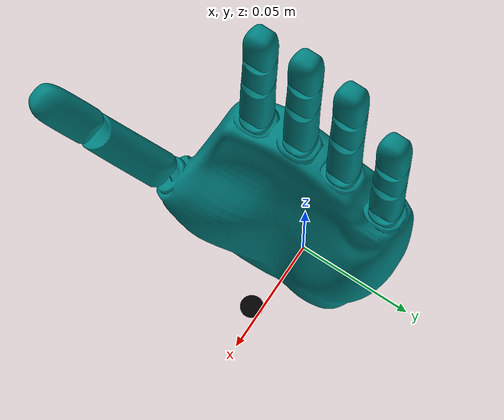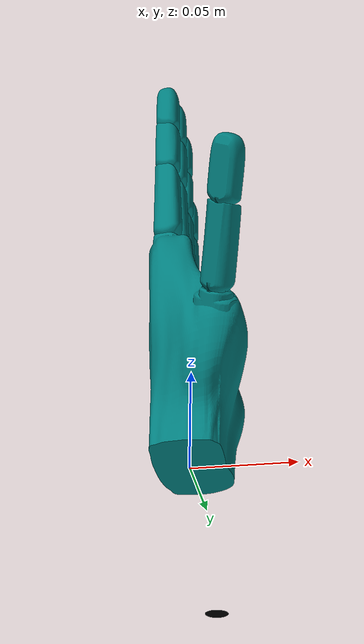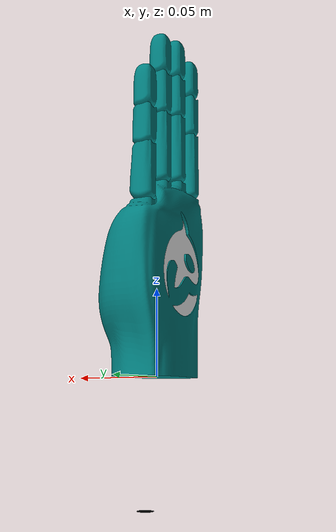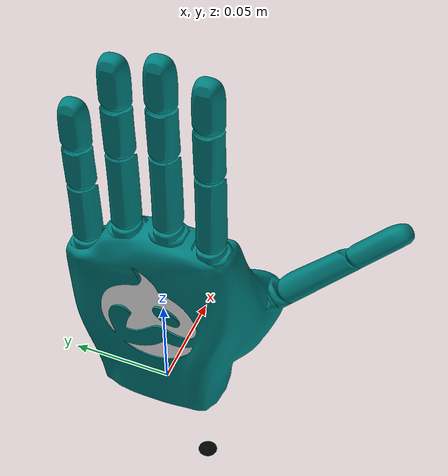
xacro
<?xml version="1.0"?>
<robot xmlns:xacro="http://www.ros.org/wiki/xacro" name="orco2">
    <xacro:arg name="initial_positions_file" default="initial_positions.yaml" />

    <!-- Import orco2 urdf file -->
    <xacro:include filename="$(find orco2_description)/urdf/orco2.xacro" />

    <!-- Import control_xacro -->
    <xacro:include filename="orco2.ros2_control.xacro" />

    <xacro:orco2_ros2_control name="FakeSystem" initial_positions_file="$(arg initial_positions_file)"/>

</robot>

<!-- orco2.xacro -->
<robot name="orco2" xmlns:xacro="http://www.ros.org/wiki/xacro">

<xacro:include filename="$(find orco2_description)/urdf/materials.xacro" />
<xacro:include filename="$(find orco2_description)/urdf/orco2.trans" />
<xacro:include filename="$(find orco2_description)/urdf/orco2.gazebo" />
<link name="base_link">
  <visual>
    <origin xyz="0 0 0" rpy="0 0 0"/>
    <geometry>
      <mesh filename="file://$(find orco2_description)/meshes/base_link.stl" scale="0.001 0.001 0.001"/>
    </geometry>
    <material name="transparent"/>
  </visual>
  <collision>
    <origin xyz="0 0 0" rpy="0 0 0"/>
    <geometry>
      <mesh filename="file://$(find orco2_description)/meshes/base_link.stl" scale="0.001 0.001 0.001"/>
    </geometry>
  </collision>
</link>

<link name="proximal_index_1">
  <inertial>
    <origin xyz="-0.00026811053890124156 -1.0667509584005863e-09 0.01315155998961394" rpy="0 0 0"/>
    <mass value="0.0021684105547166927"/>
    <inertia ixx="0.0" iyy="0.0" izz="0.0" ixy="0.0" iyz="-0.0" ixz="0.0"/>
  </inertial>
  <visual>
    <origin xyz="-0.0075 0.043 -0.04" rpy="0 0 0"/>
    <geometry>
      <mesh filename="file://$(find orco2_description)/meshes/proximal_index_1.stl" scale="0.001 0.001 0.001"/>
    </geometry>
    <material name="teal"/>
  </visual>
  <collision>
    <origin xyz="-0.0075 0.043 -0.04" rpy="0 0 0"/>
    <geometry>
      <mesh filename="file://$(find orco2_description)/meshes/proximal_index_1.stl" scale="0.001 0.001 0.001"/>
    </geometry>
  </collision>
</link>

<link name="medial_index_1">
  <inertial>
    <origin xyz="-0.0008639675427202613 -5.348660916948411e-09 0.005986507945921871" rpy="0 0 0"/>
    <mass value="0.001238578240769745"/>
    <inertia ixx="0.0" iyy="0.0" izz="0.0" ixy="-0.0" iyz="0.0" ixz="0.0"/>
  </inertial>
  <visual>
    <origin xyz="-0.0075 0.043 -0.08" rpy="0 0 0"/>
    <geometry>
      <mesh filename="file://$(find orco2_description)/meshes/medial_index_1.stl" scale="0.001 0.001 0.001"/>
    </geometry>
    <material name="teal"/>
  </visual>
  <collision>
    <origin xyz="-0.0075 0.043 -0.08" rpy="0 0 0"/>
    <geometry>
      <mesh filename="file://$(find orco2_description)/meshes/medial_index_1.stl" scale="0.001 0.001 0.001"/>
    </geometry>
  </collision>
</link>

<link name="distal_index_1">
  <inertial>
    <origin xyz="-0.0011688416492555455 3.901207579204424e-09 0.005749627128669485" rpy="0 0 0"/>
    <mass value="0.0011585425006040392"/>
    <inertia ixx="0.0" iyy="0.0" izz="0.0" ixy="0.0" iyz="-0.0" ixz="0.0"/>
  </inertial>
  <visual>
    <origin xyz="-0.0075 0.043 -0.105" rpy="0 0 0"/>
    <geometry>
      <mesh filename="file://$(find orco2_description)/meshes/distal_index_1.stl" scale="0.001 0.001 0.001"/>
    </geometry>
    <material name="teal"/>
  </visual>
  <collision>
    <origin xyz="-0.0075 0.043 -0.105" rpy="0 0 0"/>
    <geometry>
      <mesh filename="file://$(find orco2_description)/meshes/distal_index_1.stl" scale="0.001 0.001 0.001"/>
    </geometry>
  </collision>
</link>

<link name="distal_middle_1">
  <inertial>
    <origin xyz="-0.0011688416492555828 3.898220180681422e-09 0.005749627127922569" rpy="0 0 0"/>
    <mass value="0.0011585425006040593"/>
    <inertia ixx="0.0" iyy="0.0" izz="0.0" ixy="0.0" iyz="-0.0" ixz="0.0"/>
  </inertial>
  <visual>
    <origin xyz="-0.0075 0.023 -0.11" rpy="0 0 0"/>
    <geometry>
      <mesh filename="file://$(find orco2_description)/meshes/distal_middle_1.stl" scale="0.001 0.001 0.001"/>
    </geometry>
    <material name="teal"/>
  </visual>
  <collision>
    <origin xyz="-0.0075 0.023 -0.11" rpy="0 0 0"/>
    <geometry>
      <mesh filename="file://$(find orco2_description)/meshes/distal_middle_1.stl" scale="0.001 0.001 0.001"/>
    </geometry>
  </collision>
</link>

<link name="medial_middle_1">
  <inertial>
    <origin xyz="-0.0008639675427202604 -5.364127787788053e-09 0.005986507942055283" rpy="0 0 0"/>
    <mass value="0.0012385782407697422"/>
    <inertia ixx="0.0" iyy="0.0" izz="0.0" ixy="-0.0" iyz="0.0" ixz="0.0"/>
  </inertial>
  <visual>
    <origin xyz="-0.0075 0.023 -0.085" rpy="0 0 0"/>
    <geometry>
      <mesh filename="file://$(find orco2_description)/meshes/medial_middle_1.stl" scale="0.001 0.001 0.001"/>
    </geometry>
    <material name="teal"/>
  </visual>
  <collision>
    <origin xyz="-0.0075 0.023 -0.085" rpy="0 0 0"/>
    <geometry>
      <mesh filename="file://$(find orco2_description)/meshes/medial_middle_1.stl" scale="0.001 0.001 0.001"/>
    </geometry>
  </collision>
</link>

<link name="proximal_middle_1">
  <inertial>
    <origin xyz="-0.000268110538901265 -1.0667509722783741e-09 0.013151559989614071" rpy="0 0 0"/>
    <mass value="0.002168410554716695"/>
    <inertia ixx="0.0" iyy="0.0" izz="0.0" ixy="0.0" iyz="-0.0" ixz="0.0"/>
  </inertial>
  <visual>
    <origin xyz="-0.0075 0.023 -0.045" rpy="0 0 0"/>
    <geometry>
      <mesh filename="file://$(find orco2_description)/meshes/proximal_middle_1.stl" scale="0.001 0.001 0.001"/>
    </geometry>
    <material name="teal"/>
  </visual>
  <collision>
    <origin xyz="-0.0075 0.023 -0.045" rpy="0 0 0"/>
    <geometry>
      <mesh filename="file://$(find orco2_description)/meshes/proximal_middle_1.stl" scale="0.001 0.001 0.001"/>
    </geometry>
  </collision>
</link>

<link name="distal_ring_1">
  <inertial>
    <origin xyz="-0.0011688416492555524 3.895232861522019e-09 0.005749627128669457" rpy="0 0 0"/>
    <mass value="0.001158542500604051"/>
    <inertia ixx="0.0" iyy="0.0" izz="0.0" ixy="0.0" iyz="-0.0" ixz="0.0"/>
  </inertial>
  <visual>
    <origin xyz="-0.0075 0.003 -0.105" rpy="0 0 0"/>
    <geometry>
      <mesh filename="file://$(find orco2_description)/meshes/distal_ring_1.stl" scale="0.001 0.001 0.001"/>
    </geometry>
    <material name="teal"/>
  </visual>
  <collision>
    <origin xyz="-0.0075 0.003 -0.105" rpy="0 0 0"/>
    <geometry>
      <mesh filename="file://$(find orco2_description)/meshes/distal_ring_1.stl" scale="0.001 0.001 0.001"/>
    </geometry>
  </collision>
</link>

<link name="medial_ring_1">
  <inertial>
    <origin xyz="-0.0008639675427202448 -5.379594608320715e-09 0.005986507945921871" rpy="0 0 0"/>
    <mass value="0.0012385782407697366"/>
    <inertia ixx="0.0" iyy="0.0" izz="0.0" ixy="-0.0" iyz="0.0" ixz="0.0"/>
  </inertial>
  <visual>
    <origin xyz="-0.0075 0.003 -0.08" rpy="0 0 0"/>
    <geometry>
      <mesh filename="file://$(find orco2_description)/meshes/medial_ring_1.stl" scale="0.001 0.001 0.001"/>
    </geometry>
    <material name="teal"/>
  </visual>
  <collision>
    <origin xyz="-0.0075 0.003 -0.08" rpy="0 0 0"/>
    <geometry>
      <mesh filename="file://$(find orco2_description)/meshes/medial_ring_1.stl" scale="0.001 0.001 0.001"/>
    </geometry>
  </collision>
</link>

<link name="proximal_ring_1">
  <inertial>
    <origin xyz="-0.00026811053890116263 -1.0667509740130976e-09 0.01315155998961446" rpy="0 0 0"/>
    <mass value="0.002168410554716727"/>
    <inertia ixx="0.0" iyy="0.0" izz="0.0" ixy="0.0" iyz="-0.0" ixz="0.0"/>
  </inertial>
  <visual>
    <origin xyz="-0.0075 0.003 -0.04" rpy="0 0 0"/>
    <geometry>
      <mesh filename="file://$(find orco2_description)/meshes/proximal_ring_1.stl" scale="0.001 0.001 0.001"/>
    </geometry>
    <material name="teal"/>
  </visual>
  <collision>
    <origin xyz="-0.0075 0.003 -0.04" rpy="0 0 0"/>
    <geometry>
      <mesh filename="file://$(find orco2_description)/meshes/proximal_ring_1.stl" scale="0.001 0.001 0.001"/>
    </geometry>
  </collision>
</link>

<link name="distal_pinky_1">
  <inertial>
    <origin xyz="-0.0011688416492555758 3.892245525882743e-09 0.005749627132776991" rpy="0 0 0"/>
    <mass value="0.0011585425006040645"/>
    <inertia ixx="0.0" iyy="0.0" izz="0.0" ixy="0.0" iyz="-0.0" ixz="0.0"/>
  </inertial>
  <visual>
    <origin xyz="-0.0075 -0.017 -0.077436" rpy="0 0 0"/>
    <geometry>
      <mesh filename="file://$(find orco2_description)/meshes/distal_pinky_1.stl" scale="0.001 0.001 0.001"/>
    </geometry>
    <material name="teal"/>
  </visual>
  <collision>
    <origin xyz="-0.0075 -0.017 -0.077436" rpy="0 0 0"/>
    <geometry>
      <mesh filename="file://$(find orco2_description)/meshes/distal_pinky_1.stl" scale="0.001 0.001 0.001"/>
    </geometry>
  </collision>
</link>

<link name="medial_pinky_1">
  <inertial>
    <origin xyz="-0.0008729599209067948 -9.656295475030108e-09 0.004261918528484093" rpy="0 0 0"/>
    <mass value="0.001055315516696409"/>
    <inertia ixx="0.0" iyy="0.0" izz="0.0" ixy="-0.0" iyz="-0.0" ixz="0.0"/>
  </inertial>
  <visual>
    <origin xyz="-0.0075 -0.017 -0.055886" rpy="0 0 0"/>
    <geometry>
      <mesh filename="file://$(find orco2_description)/meshes/medial_pinky_1.stl" scale="0.001 0.001 0.001"/>
    </geometry>
    <material name="teal"/>
  </visual>
  <collision>
    <origin xyz="-0.0075 -0.017 -0.055886" rpy="0 0 0"/>
    <geometry>
      <mesh filename="file://$(find orco2_description)/meshes/medial_pinky_1.stl" scale="0.001 0.001 0.001"/>
    </geometry>
  </collision>
</link>

<link name="pinky_proximal_1">
  <inertial>
    <origin xyz="-0.000324605834279036 5.966053994582721e-09 0.00871586211038939" rpy="0 0 0"/>
    <mass value="0.0016456930822198463"/>
    <inertia ixx="0.0" iyy="0.0" izz="0.0" ixy="-0.0" iyz="-0.0" ixz="0.0"/>
  </inertial>
  <visual>
    <origin xyz="-0.0075 -0.017 -0.025" rpy="0 0 0"/>
    <geometry>
      <mesh filename="file://$(find orco2_description)/meshes/pinky_proximal_1.stl" scale="0.001 0.001 0.001"/>
    </geometry>
    <material name="teal"/>
  </visual>
  <collision>
    <origin xyz="-0.0075 -0.017 -0.025" rpy="0 0 0"/>
    <geometry>
      <mesh filename="file://$(find orco2_description)/meshes/pinky_proximal_1.stl" scale="0.001 0.001 0.001"/>
    </geometry>
  </collision>
</link>

<link name="thumb_distal_1">
  <inertial>
    <origin xyz="0.0015642226481202767 -0.006651680684991321 0.005725900138834596" rpy="0 0 0"/>
    <mass value="0.0017355030582503657"/>
    <inertia ixx="0.0" iyy="0.0" izz="0.0" ixy="0.0" iyz="0.0" ixz="-0.0"/>
  </inertial>
  <visual>
    <origin xyz="-0.043691 0.100735 -0.018449" rpy="0 0 0"/>
    <geometry>
      <mesh filename="file://$(find orco2_description)/meshes/thumb_distal_1.stl" scale="0.001 0.001 0.001"/>
    </geometry>
    <material name="teal"/>
  </visual>
  <collision>
    <origin xyz="-0.043691 0.100735 -0.018449" rpy="0 0 0"/>
    <geometry>
      <mesh filename="file://$(find orco2_description)/meshes/thumb_distal_1.stl" scale="0.001 0.001 0.001"/>
    </geometry>
  </collision>
</link>

<link name="thumb_proximal_1">
  <inertial>
    <origin xyz="0.0018111643219230755 -0.009987397089365649 0.009495112386079576" rpy="0 0 0"/>
    <mass value="0.0025987378853827825"/>
    <inertia ixx="0.0" iyy="0.0" izz="0.0" ixy="0.0" iyz="0.0" ixz="-0.0"/>
  </inertial>
  <visual>
    <origin xyz="-0.036852 0.071586 0.008634" rpy="0 0 0"/>
    <geometry>
      <mesh filename="file://$(find orco2_description)/meshes/thumb_proximal_1.stl" scale="0.001 0.001 0.001"/>
    </geometry>
    <material name="teal"/>
  </visual>
  <collision>
    <origin xyz="-0.036852 0.071586 0.008634" rpy="0 0 0"/>
    <geometry>
      <mesh filename="file://$(find orco2_description)/meshes/thumb_proximal_1.stl" scale="0.001 0.001 0.001"/>
    </geometry>
  </collision>
</link>

<link name="logo_upper_1">
  <inertial>
    <origin xyz="-0.0004999999999999996 -5.1880026565103224e-05 0.00029445421543498104" rpy="0 0 0"/>
    <mass value="0.00044352451798406806"/>
    <inertia ixx="0.0" iyy="0.0" izz="0.0" ixy="0.0" iyz="0.0" ixz="0.0"/>
  </inertial>
  <visual>
    <origin xyz="-0.0 0.014108 0.008069" rpy="0 0 0"/>
    <geometry>
      <mesh filename="file://$(find orco2_description)/meshes/logo_upper_1.stl" scale="0.001 0.001 0.001"/>
    </geometry>
    <material name="white"/>
  </visual>
  <collision>
    <origin xyz="-0.0 0.014108 0.008069" rpy="0 0 0"/>
    <geometry>
      <mesh filename="file://$(find orco2_description)/meshes/logo_upper_1.stl" scale="0.001 0.001 0.001"/>
    </geometry>
  </collision>
</link>

<link name="logo_lower_1">
  <inertial>
    <origin xyz="-0.0004999999999999999 -0.002363563567637672 -9.282256300421204e-05" rpy="0 0 0"/>
    <mass value="0.0001064791641967489"/>
    <inertia ixx="0.0" iyy="0.0" izz="0.0" ixy="0.0" iyz="0.0" ixz="0.0"/>
  </inertial>
  <visual>
    <origin xyz="-0.0 0.018785 0.034692" rpy="0 0 0"/>
    <geometry>
      <mesh filename="file://$(find orco2_description)/meshes/logo_lower_1.stl" scale="0.001 0.001 0.001"/>
    </geometry>
    <material name="white"/>
  </visual>
  <collision>
    <origin xyz="-0.0 0.018785 0.034692" rpy="0 0 0"/>
    <geometry>
      <mesh filename="file://$(find orco2_description)/meshes/logo_lower_1.stl" scale="0.001 0.001 0.001"/>
    </geometry>
  </collision>
</link>

<link name="palm_1">
  <inertial>
    <origin xyz="0.0015087580029516864 -0.0020374080683594614 0.049621753450303605" rpy="0 0 0"/>
    <mass value="0.0994856501212332"/>
    <inertia ixx="0.000127" iyy="8.6e-05" izz="6.4e-05" ixy="5e-06" iyz="2e-06" ixz="6e-06"/>
  </inertial>
  <visual>
    <origin xyz="-0.015 0.015 0.075" rpy="0 0 0"/>
    <geometry>
      <mesh filename="file://$(find orco2_description)/meshes/palm_1.stl" scale="0.001 0.001 0.001"/>
    </geometry>
    <material name="teal"/>
  </visual>
  <collision>
    <origin xyz="-0.015 0.015 0.075" rpy="0 0 0"/>
    <geometry>
      <mesh filename="file://$(find orco2_description)/meshes/palm_1.stl" scale="0.001 0.001 0.001"/>
    </geometry>
  </collision>
</link>

<joint name="index" type="revolute">
  <origin xyz="-0.0075 -0.028 0.115" rpy="0 0 0"/>
  <parent link="palm_1"/>
  <child link="proximal_index_1"/>
  <axis xyz="0.0 1.0 0.0"/>
  <limit effort="1000.0" lower="0.0" upper="1.7" velocity="0.5"/>
  <limit effort="1000.0" lower="0.0" upper="1.7" velocity="0.5"/>
</joint>

<joint name="index (1)" type="revolute">
  <origin xyz="0.0 0.0 0.04" rpy="0 0 0"/>
  <parent link="proximal_index_1"/>
  <child link="medial_index_1"/>
  <axis xyz="0.0 1.0 0.0"/>
  <limit effort="1000.0" lower="0.0" upper="1.7" velocity="0.5"/>
</joint>

<joint name="index (2)" type="revolute">
  <origin xyz="0.0 0.0 0.025" rpy="0 0 0"/>
  <parent link="medial_index_1"/>
  <child link="distal_index_1"/>
  <axis xyz="0.0 1.0 0.0"/>
  <limit effort="1000.0" lower="0.0" upper="1.7" velocity="0.5"/>
</joint>

<joint name="middle" type="revolute">
  <origin xyz="0.0 0.0 0.025" rpy="0 0 0"/>
  <parent link="medial_middle_1"/>
  <child link="distal_middle_1"/>
  <axis xyz="0.0 1.0 0.0"/>
  <limit effort="1000.0" lower="0.0" upper="1.7" velocity="0.5"/>
</joint>

<joint name="middle (1)" type="revolute">
  <origin xyz="0.0 0.0 0.04" rpy="0 0 0"/>
  <parent link="proximal_middle_1"/>
  <child link="medial_middle_1"/>
  <axis xyz="0.0 1.0 0.0"/>
  <limit effort="1000.0" lower="0.0" upper="1.7" velocity="0.5"/>
</joint>

<joint name="middle (2)" type="revolute">
  <origin xyz="-0.0075 -0.008 0.12" rpy="0 0 0"/>
  <parent link="palm_1"/>
  <child link="proximal_middle_1"/>
  <axis xyz="0.0 1.0 0.0"/>
  <limit effort="1000.0" lower="0.0" upper="1.7" velocity="0.5"/>
</joint>

<joint name="ring" type="revolute">
  <origin xyz="0.0 0.0 0.025" rpy="0 0 0"/>
  <parent link="medial_ring_1"/>
  <child link="distal_ring_1"/>
  <axis xyz="0.0 1.0 0.0"/>
  <limit effort="1000.0" lower="0.0" upper="1.7" velocity="0.5"/>
</joint>

<joint name="ring (1)" type="revolute">
  <origin xyz="0.0 0.0 0.04" rpy="0 0 0"/>
  <parent link="proximal_ring_1"/>
  <child link="medial_ring_1"/>
  <axis xyz="0.0 1.0 0.0"/>
  <limit effort="1000.0" lower="0.0" upper="1.7" velocity="0.5"/>
</joint>

<joint name="ring (2)" type="revolute">
  <origin xyz="-0.0075 0.012 0.115" rpy="0 0 0"/>
  <parent link="palm_1"/>
  <child link="proximal_ring_1"/>
  <axis xyz="0.0 1.0 0.0"/>
  <limit effort="1000.0" lower="0.0" upper="1.7" velocity="0.5"/>
</joint>

<joint name="pinky" type="revolute">
  <origin xyz="0.0 0.0 0.02155" rpy="0 0 0"/>
  <parent link="medial_pinky_1"/>
  <child link="distal_pinky_1"/>
  <axis xyz="0.0 1.0 0.0"/>
  <limit effort="1000.0" lower="0.0" upper="1.7" velocity="0.5"/>
</joint>

<joint name="pinky (1)" type="revolute">
  <origin xyz="0.0 0.0 0.030886" rpy="0 0 0"/>
  <parent link="pinky_proximal_1"/>
  <child link="medial_pinky_1"/>
  <axis xyz="0.0 1.0 0.0"/>
  <limit effort="1000.0" lower="0.0" upper="1.7" velocity="0.5"/>
</joint>

<joint name="pinky (2)" type="revolute">
  <origin xyz="-0.0075 0.032 0.1" rpy="0 0 0"/>
  <parent link="palm_1"/>
  <child link="pinky_proximal_1"/>
  <axis xyz="0.0 1.0 0.0"/>
  <limit effort="1000.0" lower="0.0" upper="1.7" velocity="0.5"/>
</joint>

<joint name="thumb" type="revolute">
  <origin xyz="0.006839 -0.029149 0.027083" rpy="0 0 0"/>
  <parent link="thumb_proximal_1"/>
  <child link="thumb_distal_1"/>
  <axis xyz="0.866854 -0.19064 -0.460675"/>
  <limit effort="1000.0" lower="-1.7" upper="0.0" velocity="0.5"/>
</joint>

<joint name="thumb (1)" type="revolute">
  <origin xyz="0.021852 -0.056586 0.066366" rpy="0 0 0"/>
  <parent link="palm_1"/>
  <child link="thumb_proximal_1"/>
  <axis xyz="0.866854 -0.19064 -0.460675"/>
  <limit effort="1000.0" lower="-1.7" upper="0.0" velocity="0.5"/>
</joint>

<joint name="palm" type="fixed">
  <origin xyz="-0.015 0.000892 0.066931" rpy="0 0 0"/>
  <parent link="palm_1"/>
  <child link="logo_upper_1"/>
</joint>

<joint name="palm (1)" type="fixed">
  <origin xyz="-0.015 -0.003785 0.040308" rpy="0 0 0"/>
  <parent link="palm_1"/>
  <child link="logo_lower_1"/>
</joint>

<joint name="palm (2)" type="fixed">
  <origin xyz="0.0 0.0 0.0" rpy="0 0 0"/>
  <parent link="base_link"/>
  <child link="palm_1"/>
</joint>

</robot>

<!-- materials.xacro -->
<robot name="orco2" xmlns:xacro="http://www.ros.org/wiki/xacro" >

<material name="teal">
  <color rgba="0.000 0.502 0.502 1.000"/>
</material>

<material name="white">
  <color rgba="1.000 1.000 1.000 1.000"/>
</material>

<material name="transparent">
  <color rgba="0.000 0.000 0.000 0.000"/>
</material>

</robot>

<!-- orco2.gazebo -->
<robot name="orco2" xmlns:xacro="http://www.ros.org/wiki/xacro" >

<xacro:property name="body_color" value="Gazebo/Silver" />

<gazebo>
  <plugin name="control" filename="libgazebo_ros_control.so"/>
</gazebo>
<gazebo reference="base_link">
  <material>${body_color}</material>
  <mu1>0.2</mu1>
  <mu2>0.2</mu2>
  <self_collide>true</self_collide>
  <gravity>true</gravity>
</gazebo>

<gazebo reference="proximal_index_1">
  <material>${body_color}</material>
  <mu1>0.2</mu1>
  <mu2>0.2</mu2>
  <self_collide>true</self_collide>
</gazebo>

<gazebo reference="medial_index_1">
  <material>${body_color}</material>
  <mu1>0.2</mu1>
  <mu2>0.2</mu2>
  <self_collide>true</self_collide>
</gazebo>

<gazebo reference="distal_index_1">
  <material>${body_color}</material>
  <mu1>0.2</mu1>
  <mu2>0.2</mu2>
  <self_collide>true</self_collide>
</gazebo>

<gazebo reference="distal_middle_1">
  <material>${body_color}</material>
  <mu1>0.2</mu1>
  <mu2>0.2</mu2>
  <self_collide>true</self_collide>
</gazebo>

<gazebo reference="medial_middle_1">
  <material>${body_color}</material>
  <mu1>0.2</mu1>
  <mu2>0.2</mu2>
  <self_collide>true</self_collide>
</gazebo>

<gazebo reference="proximal_middle_1">
  <material>${body_color}</material>
  <mu1>0.2</mu1>
  <mu2>0.2</mu2>
  <self_collide>true</self_collide>
</gazebo>

<gazebo reference="distal_ring_1">
  <material>${body_color}</material>
  <mu1>0.2</mu1>
  <mu2>0.2</mu2>
  <self_collide>true</self_collide>
</gazebo>

<gazebo reference="medial_ring_1">
  <material>${body_color}</material>
  <mu1>0.2</mu1>
  <mu2>0.2</mu2>
  <self_collide>true</self_collide>
</gazebo>

<gazebo reference="proximal_ring_1">
  <material>${body_color}</material>
  <mu1>0.2</mu1>
  <mu2>0.2</mu2>
  <self_collide>true</self_collide>
</gazebo>

<gazebo reference="distal_pinky_1">
  <material>${body_color}</material>
  <mu1>0.2</mu1>
  <mu2>0.2</mu2>
  <self_collide>true</self_collide>
</gazebo>

<gazebo reference="medial_pinky_1">
  <material>${body_color}</material>
  <mu1>0.2</mu1>
  <mu2>0.2</mu2>
  <self_collide>true</self_collide>
</gazebo>

<gazebo reference="pinky_proximal_1">
  <material>${body_color}</material>
  <mu1>0.2</mu1>
  <mu2>0.2</mu2>
  <self_collide>true</self_collide>
</gazebo>

<gazebo reference="thumb_distal_1">
  <material>${body_color}</material>
  <mu1>0.2</mu1>
  <mu2>0.2</mu2>
  <self_collide>true</self_collide>
</gazebo>

<gazebo reference="thumb_proximal_1">
  <material>${body_color}</material>
  <mu1>0.2</mu1>
  <mu2>0.2</mu2>
  <self_collide>true</self_collide>
</gazebo>

<gazebo reference="logo_upper_1">
  <material>${body_color}</material>
  <mu1>0.2</mu1>
  <mu2>0.2</mu2>
  <self_collide>true</self_collide>
</gazebo>

<gazebo reference="logo_lower_1">
  <material>${body_color}</material>
  <mu1>0.2</mu1>
  <mu2>0.2</mu2>
  <self_collide>true</self_collide>
</gazebo>

<gazebo reference="palm_1">
  <material>${body_color}</material>
  <mu1>0.2</mu1>
  <mu2>0.2</mu2>
  <self_collide>true</self_collide>
</gazebo>

</robot>
